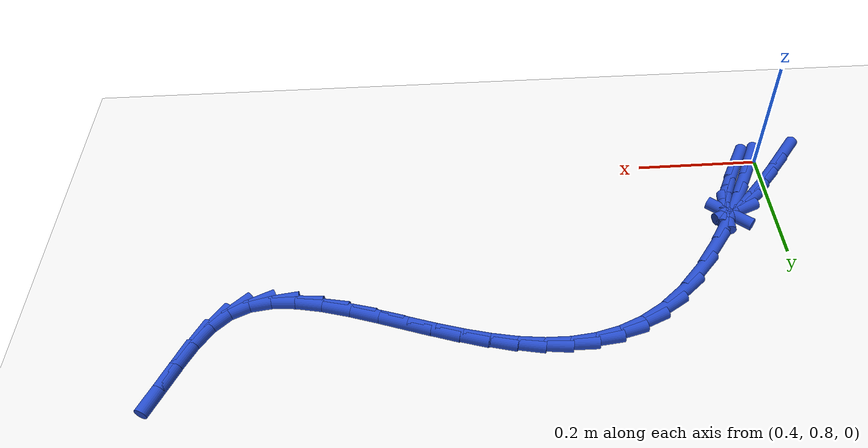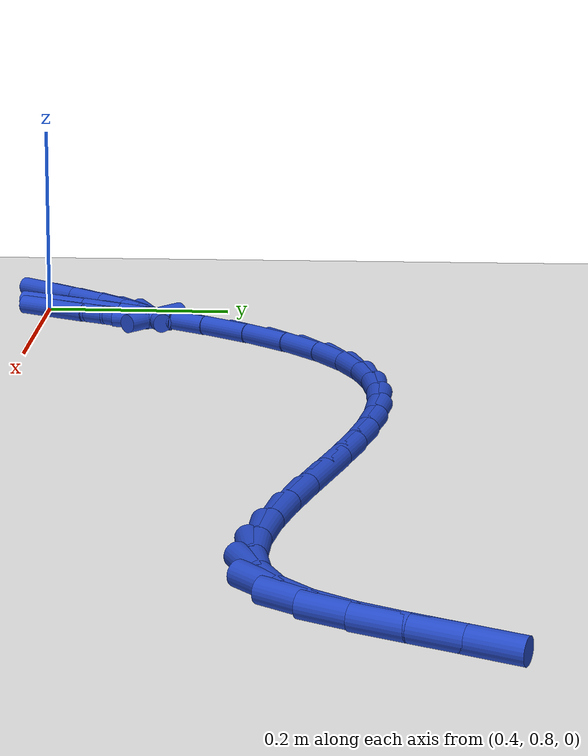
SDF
<sdf version="1.6">
 <world name="default">
  <model name="ground_plane">
   <static>1</static>
   <link name="link">
    <collision name="collision">
     <geometry><plane><normal>0 0 1</normal><size>100 100</size></plane></geometry>
     <surface><friction><ode><mu>100</mu><mu2>50</mu2></ode></friction></surface>
    </collision>
    <visual name="visual">
     <cast_shadows>0</cast_shadows>
     <geometry><plane><normal>0 0 1</normal><size>100 100</size></plane></geometry>
     <material>
      <script><uri>file://media/materials/scripts/gazebo.material</uri><name>Gazebo/WhiteGlow</name></script>
     </material>
    </visual>
   </link>
  </model>
  <model name="line">
   <link name="link_18">
    <pose>0.35145759149359745 0.7937490673103714 0.01 0 1.57 0.9050532319355539</pose>
    <collision name="collision">
     <geometry><cylinder><radius>0.01</radius><length>0.08</length></cylinder></geometry>
    </collision>
    <visual name="visual">
     <material>
      <script><name>Gazebo/Blue</name><uri>file://media/materials/scripts/gazebo.material</uri></script>
     </material>
     <geometry><cylinder><radius>0.01</radius><length>0.08</length></cylinder></geometry>
    </visual>
   </link>
   <link name="link_19">
    <pose>0.38018925200581055 0.8303336623813288 0.01 0 1.57 0.8774405375104989</pose>
    <collision name="collision">
     <geometry><cylinder><radius>0.01</radius><length>0.08</length></cylinder></geometry>
    </collision>
    <visual name="visual">
     <material>
      <script><name>Gazebo/Blue</name><uri>file://media/materials/scripts/gazebo.material</uri></script>
     </material>
     <geometry><cylinder><radius>0.01</radius><length>0.08</length></cylinder></geometry>
    </visual>
   </link>
   <link name="link_20">
    <pose>0.4063986894016276 0.861873545687972 0.01 0 1.57 0.840209370832982</pose>
    <collision name="collision">
     <geometry><cylinder><radius>0.01</radius><length>0.08</length></cylinder></geometry>
    </collision>
    <visual name="visual">
     <material>
      <script><name>Gazebo/Blue</name><uri>file://media/materials/scripts/gazebo.material</uri></script>
     </material>
     <geometry><cylinder><radius>0.01</radius><length>0.08</length></cylinder></geometry>
    </visual>
   </link>
   <link name="link_21">
    <pose>0.42950767926813904 0.8876655451920389 0.01 0 1.57 0.7830929997503696</pose>
    <collision name="collision">
     <geometry><cylinder><radius>0.01</radius><length>0.08</length></cylinder></geometry>
    </collision>
    <visual name="visual">
     <material>
      <script><name>Gazebo/Blue</name><uri>file://media/materials/scripts/gazebo.material</uri></script>
     </material>
     <geometry><cylinder><radius>0.01</radius><length>0.08</length></cylinder></geometry>
    </visual>
   </link>
   <link name="link_22">
    <pose>0.44893799719243466 0.9070064888552665 0.01 0 1.57 0.6766660261103121</pose>
    <collision name="collision">
     <geometry><cylinder><radius>0.01</radius><length>0.08</length></cylinder></geometry>
    </collision>
    <visual name="visual">
     <material>
      <script><name>Gazebo/Blue</name><uri>file://media/materials/scripts/gazebo.material</uri></script>
     </material>
     <geometry><cylinder><radius>0.01</radius><length>0.08</length></cylinder></geometry>
    </visual>
   </link>
   <link name="link_23">
    <pose>0.46411141876160455 0.9191932046393917 0.01 0 1.57 0.3965774962460237</pose>
    <collision name="collision">
     <geometry><cylinder><radius>0.01</radius><length>0.08</length></cylinder></geometry>
    </collision>
    <visual name="visual">
     <material>
      <script><name>Gazebo/Blue</name><uri>file://media/materials/scripts/gazebo.material</uri></script>
     </material>
     <geometry><cylinder><radius>0.01</radius><length>0.08</length></cylinder></geometry>
    </visual>
   </link>
   <link name="link_24">
    <pose>0.47444971956273885 0.9235225205061519 0.01 0 1.57 -0.7097799023059139</pose>
    <collision name="collision">
     <geometry><cylinder><radius>0.01</radius><length>0.08</length></cylinder></geometry>
    </collision>
    <visual name="visual">
     <material>
      <script><name>Gazebo/Blue</name><uri>file://media/materials/scripts/gazebo.material</uri></script>
     </material>
     <geometry><cylinder><radius>0.01</radius><length>0.08</length></cylinder></geometry>
    </visual>
   </link>
   <link name="link_25">
    <pose>0.47937467518292737 0.9192912644172844 0.01 0 1.57 1.4919225792418223</pose>
    <collision name="collision">
     <geometry><cylinder><radius>0.01</radius><length>0.08</length></cylinder></geometry>
    </collision>
    <visual name="visual">
     <material>
      <script><name>Gazebo/Blue</name><uri>file://media/materials/scripts/gazebo.material</uri></script>
     </material>
     <geometry><cylinder><radius>0.01</radius><length>0.08</length></cylinder></geometry>
    </visual>
   </link>
   <link name="link_26">
    <pose>0.4783080612092605 0.9057962643345265 0.01 0 1.57 1.2561294388235926</pose>
    <collision name="collision">
     <geometry><cylinder><radius>0.01</radius><length>0.08</length></cylinder></geometry>
    </collision>
    <visual name="visual">
     <material>
      <script><name>Gazebo/Blue</name><uri>file://media/materials/scripts/gazebo.material</uri></script>
     </material>
     <geometry><cylinder><radius>0.01</radius><length>0.08</length></cylinder></geometry>
    </visual>
   </link>
   <link name="link_27">
    <pose>0.4706716532288282 0.8823343482196155 0.01 0 1.57 1.1640334516660944</pose>
    <collision name="collision">
     <geometry><cylinder><radius>0.01</radius><length>0.08</length></cylinder></geometry>
    </collision>
    <visual name="visual">
     <material>
      <script><name>Gazebo/Blue</name><uri>file://media/materials/scripts/gazebo.material</uri></script>
     </material>
     <geometry><cylinder><radius>0.01</radius><length>0.08</length></cylinder></geometry>
    </visual>
   </link>
   <link name="link_28">
    <pose>0.4562442401005578 0.8488435958315781 0.01 0 1.57 1.1198259371495412</pose>
    <collision name="collision">
     <geometry><cylinder><radius>0.01</radius><length>0.08</length></cylinder></geometry>
    </collision>
    <visual name="visual">
     <material>
      <script><name>Gazebo/Blue</name><uri>file://media/materials/scripts/gazebo.material</uri></script>
     </material>
     <geometry><cylinder><radius>0.01</radius><length>0.08</length></cylinder></geometry>
    </visual>
   </link>
   <link name="link_29">
    <pose>0.43737880218477027 0.8098857383649793 0.01 0 1.57 1.088221807217513</pose>
    <collision name="collision">
     <geometry><cylinder><radius>0.01</radius><length>0.08</length></cylinder></geometry>
    </collision>
    <visual name="visual">
     <material>
      <script><name>Gazebo/Blue</name><uri>file://media/materials/scripts/gazebo.material</uri></script>
     </material>
     <geometry><cylinder><radius>0.01</radius><length>0.08</length></cylinder></geometry>
    </visual>
   </link>
   <link name="link_36">
    <pose>0.4138292707366294 0.8070556492563422 0.01 0 1.57 1.136280830870113</pose>
    <collision name="collision">
     <geometry><cylinder><radius>0.01</radius><length>0.08</length></cylinder></geometry>
    </collision>
    <visual name="visual">
     <material>
      <script><name>Gazebo/Blue</name><uri>file://media/materials/scripts/gazebo.material</uri></script>
     </material>
     <geometry><cylinder><radius>0.01</radius><length>0.08</length></cylinder></geometry>
    </visual>
   </link>
   <link name="link_37">
    <pose>0.4340012934886664 0.8505206882266921 0.01 0 1.57 1.0981485871081271</pose>
    <collision name="collision">
     <geometry><cylinder><radius>0.01</radius><length>0.08</length></cylinder></geometry>
    </collision>
    <visual name="visual">
     <material>
      <script><name>Gazebo/Blue</name><uri>file://media/materials/scripts/gazebo.material</uri></script>
     </material>
     <geometry><cylinder><radius>0.01</radius><length>0.08</length></cylinder></geometry>
    </visual>
   </link>
   <link name="link_38">
    <pose>0.458258331327164 0.8979624542513392 0.01 0 1.57 1.0558533815253084</pose>
    <collision name="collision">
     <geometry><cylinder><radius>0.01</radius><length>0.08</length></cylinder></geometry>
    </collision>
    <visual name="visual">
     <material>
      <script><name>Gazebo/Blue</name><uri>file://media/materials/scripts/gazebo.material</uri></script>
     </material>
     <geometry><cylinder><radius>0.01</radius><length>0.08</length></cylinder></geometry>
    </visual>
   </link>
   <link name="link_39">
    <pose>0.4858524588518607 0.946726851750425 0.01 0 1.57 1.0040866494532676</pose>
    <collision name="collision">
     <geometry><cylinder><radius>0.01</radius><length>0.08</length></cylinder></geometry>
    </collision>
    <visual name="visual">
     <material>
      <script><name>Gazebo/Blue</name><uri>file://media/materials/scripts/gazebo.material</uri></script>
     </material>
     <geometry><cylinder><radius>0.01</radius><length>0.08</length></cylinder></geometry>
    </visual>
   </link>
   <link name="link_40">
    <pose>0.516035750662495 0.9941597851440909 0.01 0 1.57 0.9356103478978652</pose>
    <collision name="collision">
     <geometry><cylinder><radius>0.01</radius><length>0.08</length></cylinder></geometry>
    </collision>
    <visual name="visual">
     <material>
      <script><name>Gazebo/Blue</name><uri>file://media/materials/scripts/gazebo.material</uri></script>
     </material>
     <geometry><cylinder><radius>0.01</radius><length>0.08</length></cylinder></geometry>
    </visual>
   </link>
   <link name="link_41">
    <pose>0.5480602813588054 1.0376071588524782 0.01 0 1.57 0.8385921787919395</pose>
    <collision name="collision">
     <geometry><cylinder><radius>0.01</radius><length>0.08</length></cylinder></geometry>
    </collision>
    <visual name="visual">
     <material>
      <script><name>Gazebo/Blue</name><uri>file://media/materials/scripts/gazebo.material</uri></script>
     </material>
     <geometry><cylinder><radius>0.01</radius><length>0.08</length></cylinder></geometry>
    </visual>
   </link>
   <link name="link_42">
    <pose>0.5811889219782671 1.074462018076603 0.01 0 1.57 0.7105581301492536</pose>
    <collision name="collision">
     <geometry><cylinder><radius>0.01</radius><length>0.08</length></cylinder></geometry>
    </collision>
    <visual name="visual">
     <material>
      <script><name>Gazebo/Blue</name><uri>file://media/materials/scripts/gazebo.material</uri></script>
     </material>
     <geometry><cylinder><radius>0.01</radius><length>0.08</length></cylinder></geometry>
    </visual>
   </link>
   <link name="link_43">
    <pose>0.6150175830558817 1.1035715674687974 0.01 0 1.57 0.5655733959831735</pose>
    <collision name="collision">
     <geometry><cylinder><radius>0.01</radius><length>0.08</length></cylinder></geometry>
    </collision>
    <visual name="visual">
     <material>
      <script><name>Gazebo/Blue</name><uri>file://media/materials/scripts/gazebo.material</uri></script>
     </material>
     <geometry><cylinder><radius>0.01</radius><length>0.08</length></cylinder></geometry>
    </visual>
   </link>
   <link name="link_44">
    <pose>0.6495304367287406 1.1254782889156494 0.01 0 1.57 0.41099620286412136</pose>
    <collision name="collision">
     <geometry><cylinder><radius>0.01</radius><length>0.08</length></cylinder></geometry>
    </collision>
    <visual name="visual">
     <material>
      <script><name>Gazebo/Blue</name><uri>file://media/materials/scripts/gazebo.material</uri></script>
     </material>
     <geometry><cylinder><radius>0.01</radius><length>0.08</length></cylinder></geometry>
    </visual>
   </link>
   <link name="link_45">
    <pose>0.6847335775464717 1.1408203847321674 0.01 0 1.57 0.2565010872065976</pose>
    <collision name="collision">
     <geometry><cylinder><radius>0.01</radius><length>0.08</length></cylinder></geometry>
    </collision>
    <visual name="visual">
     <material>
      <script><name>Gazebo/Blue</name><uri>file://media/materials/scripts/gazebo.material</uri></script>
     </material>
     <geometry><cylinder><radius>0.01</radius><length>0.08</length></cylinder></geometry>
    </visual>
   </link>
   <link name="link_46">
    <pose>0.7206331000587022 1.1502360572333612 0.01 0 1.57 0.11229137412723873</pose>
    <collision name="collision">
     <geometry><cylinder><radius>0.01</radius><length>0.08</length></cylinder></geometry>
    </collision>
    <visual name="visual">
     <material>
      <script><name>Gazebo/Blue</name><uri>file://media/materials/scripts/gazebo.material</uri></script>
     </material>
     <geometry><cylinder><radius>0.01</radius><length>0.08</length></cylinder></geometry>
    </visual>
   </link>
   <link name="link_47">
    <pose>0.7572350988150601 1.1543635087342392 0.01 0 1.57 -0.014004959587400417</pose>
    <collision name="collision">
     <geometry><cylinder><radius>0.01</radius><length>0.08</length></cylinder></geometry>
    </collision>
    <visual name="visual">
     <material>
      <script><name>Gazebo/Blue</name><uri>file://media/materials/scripts/gazebo.material</uri></script>
     </material>
     <geometry><cylinder><radius>0.01</radius><length>0.08</length></cylinder></geometry>
    </visual>
   </link>
   <link name="link_48">
    <pose>0.7945456683651727 1.1538409415498105 0.01 0 1.57 -0.1186862477228279</pose>
    <collision name="collision">
     <geometry><cylinder><radius>0.01</radius><length>0.08</length></cylinder></geometry>
    </collision>
    <visual name="visual">
     <material>
      <script><name>Gazebo/Blue</name><uri>file://media/materials/scripts/gazebo.material</uri></script>
     </material>
     <geometry><cylinder><radius>0.01</radius><length>0.08</length></cylinder></geometry>
    </visual>
   </link>
   <link name="link_49">
    <pose>0.8325709032586673 1.1493065579950847 0.01 0 1.57 -0.20133325647392575</pose>
    <collision name="collision">
     <geometry><cylinder><radius>0.01</radius><length>0.08</length></cylinder></geometry>
    </collision>
    <visual name="visual">
     <material>
      <script><name>Gazebo/Blue</name><uri>file://media/materials/scripts/gazebo.material</uri></script>
     </material>
     <geometry><cylinder><radius>0.01</radius><length>0.08</length></cylinder></geometry>
    </visual>
   </link>
   <link name="link_50">
    <pose>0.8713168980451721 1.14139856038507 0.01 0 1.57 -0.2633750907515432</pose>
    <collision name="collision">
     <geometry><cylinder><radius>0.01</radius><length>0.08</length></cylinder></geometry>
    </collision>
    <visual name="visual">
     <material>
      <script><name>Gazebo/Blue</name><uri>file://media/materials/scripts/gazebo.material</uri></script>
     </material>
     <geometry><cylinder><radius>0.01</radius><length>0.08</length></cylinder></geometry>
    </visual>
   </link>
   <link name="link_51">
    <pose>0.910789747274314 1.130755151034776 0.01 0 1.57 -0.30687484125945513</pose>
    <collision name="collision">
     <geometry><cylinder><radius>0.01</radius><length>0.08</length></cylinder></geometry>
    </collision>
    <visual name="visual">
     <material>
      <script><name>Gazebo/Blue</name><uri>file://media/materials/scripts/gazebo.material</uri></script>
     </material>
     <geometry><cylinder><radius>0.01</radius><length>0.08</length></cylinder></geometry>
    </visual>
   </link>
   <link name="link_52">
    <pose>0.9509955454957211 1.1180145322592112 0.01 0 1.57 -0.3338180950539624</pose>
    <collision name="collision">
     <geometry><cylinder><radius>0.01</radius><length>0.08</length></cylinder></geometry>
    </collision>
    <visual name="visual">
     <material>
      <script><name>Gazebo/Blue</name><uri>file://media/materials/scripts/gazebo.material</uri></script>
     </material>
     <geometry><cylinder><radius>0.01</radius><length>0.08</length></cylinder></geometry>
    </visual>
   </link>
   <link name="link_53">
    <pose>0.991940250162675 1.103815051117857 0.01 0 1.57 -0.34305378490728666</pose>
    <collision name="collision">
     <geometry><cylinder><radius>0.01</radius><length>0.08</length></cylinder></geometry>
    </collision>
    <visual name="visual">
     <material>
      <script><name>Gazebo/Blue</name><uri>file://media/materials/scripts/gazebo.material</uri></script>
     </material>
     <geometry><cylinder><radius>0.01</radius><length>0.08</length></cylinder></geometry>
    </visual>
   </link>
   <link name="link_54">
    <pose>1.0334445051789358 1.0889907062156663 0.01 0 1.57 -0.3272957050151631</pose>
    <collision name="collision">
     <geometry><cylinder><radius>0.01</radius><length>0.08</length></cylinder></geometry>
    </collision>
    <visual name="visual">
     <material>
      <script><name>Gazebo/Blue</name><uri>file://media/materials/scripts/gazebo.material</uri></script>
     </material>
     <geometry><cylinder><radius>0.01</radius><length>0.08</length></cylinder></geometry>
    </visual>
   </link>
   <link name="link_55">
    <pose>1.0747772366231614 1.07495799239397 0.01 0 1.57 -0.2827508466270067</pose>
    <collision name="collision">
     <geometry><cylinder><radius>0.01</radius><length>0.08</length></cylinder></geometry>
    </collision>
    <visual name="visual">
     <material>
      <script><name>Gazebo/Blue</name><uri>file://media/materials/scripts/gazebo.material</uri></script>
     </material>
     <geometry><cylinder><radius>0.01</radius><length>0.08</length></cylinder></geometry>
    </visual>
   </link>
   <link name="link_56">
    <pose>1.1151051571162207 1.0632413200838426 0.01 0 1.57 -0.20184469161221588</pose>
    <collision name="collision">
     <geometry><cylinder><radius>0.01</radius><length>0.08</length></cylinder></geometry>
    </collision>
    <visual name="visual">
     <material>
      <script><name>Gazebo/Blue</name><uri>file://media/materials/scripts/gazebo.material</uri></script>
     </material>
     <geometry><cylinder><radius>0.01</radius><length>0.08</length></cylinder></geometry>
    </visual>
   </link>
   <link name="link_57">
    <pose>1.1535949792789832 1.0553650997163582 0.01 0 1.57 -0.06999900424213847</pose>
    <collision name="collision">
     <geometry><cylinder><radius>0.01</radius><length>0.08</length></cylinder></geometry>
    </collision>
    <visual name="visual">
     <material>
      <script><name>Gazebo/Blue</name><uri>file://media/materials/scripts/gazebo.material</uri></script>
     </material>
     <geometry><cylinder><radius>0.01</radius><length>0.08</length></cylinder></geometry>
    </visual>
   </link>
   <link name="link_58">
    <pose>1.1894134157323186 1.0528537417225916 0.01 0 1.57 0.13466150895083281</pose>
    <collision name="collision">
     <geometry><cylinder><radius>0.01</radius><length>0.08</length></cylinder></geometry>
    </collision>
    <visual name="visual">
     <material>
      <script><name>Gazebo/Blue</name><uri>file://media/materials/scripts/gazebo.material</uri></script>
     </material>
     <geometry><cylinder><radius>0.01</radius><length>0.08</length></cylinder></geometry>
    </visual>
   </link>
   <link name="link_59">
    <pose>1.2217271790970958 1.057231656533618 0.01 0 1.57 0.4288456730193809</pose>
    <collision name="collision">
     <geometry><cylinder><radius>0.01</radius><length>0.08</length></cylinder></geometry>
    </collision>
    <visual name="visual">
     <material>
      <script><name>Gazebo/Blue</name><uri>file://media/materials/scripts/gazebo.material</uri></script>
     </material>
     <geometry><cylinder><radius>0.01</radius><length>0.08</length></cylinder></geometry>
    </visual>
   </link>
   <link name="link_60">
    <pose>1.2497031522457636 1.070022960835237 0.01 0 1.57 0.7557472335822882</pose>
    <collision name="collision">
     <geometry><cylinder><radius>0.01</radius><length>0.08</length></cylinder></geometry>
    </collision>
    <visual name="visual">
     <material>
      <script><name>Gazebo/Blue</name><uri>file://media/materials/scripts/gazebo.material</uri></script>
     </material>
     <geometry><cylinder><radius>0.01</radius><length>0.08</length></cylinder></geometry>
    </visual>
   </link>
   <link name="link_61">
    <pose>1.2729721134688545 1.0919513846858242 0.01 0 1.57 0.9787714327131343</pose>
    <collision name="collision">
     <geometry><cylinder><radius>0.01</radius><length>0.08</length></cylinder></geometry>
    </collision>
    <visual name="visual">
     <material>
      <script><name>Gazebo/Blue</name><uri>file://media/materials/scripts/gazebo.material</uri></script>
     </material>
     <geometry><cylinder><radius>0.01</radius><length>0.08</length></cylinder></geometry>
    </visual>
   </link>
   <link name="link_62">
    <pose>1.2926393245220775 1.1211966432604923 0.01 0 1.57 1.0991370596460108</pose>
    <collision name="collision">
     <geometry><cylinder><radius>0.01</radius><length>0.08</length></cylinder></geometry>
    </collision>
    <visual name="visual">
     <material>
      <script><name>Gazebo/Blue</name><uri>file://media/materials/scripts/gazebo.material</uri></script>
     </material>
     <geometry><cylinder><radius>0.01</radius><length>0.08</length></cylinder></geometry>
    </visual>
   </link>
   <link name="link_63">
    <pose>1.310102336750312 1.1554341469505882 0.01 0 1.57 1.146837839591366</pose>
    <collision name="collision">
     <geometry><cylinder><radius>0.01</radius><length>0.08</length></cylinder></geometry>
    </collision>
    <visual name="visual">
     <material>
      <script><name>Gazebo/Blue</name><uri>file://media/materials/scripts/gazebo.material</uri></script>
     </material>
     <geometry><cylinder><radius>0.01</radius><length>0.08</length></cylinder></geometry>
    </visual>
   </link>
   <link name="link_64">
    <pose>1.3267587014984363 1.1923393061474576 0.01 0 1.57 1.1371547107826017</pose>
    <collision name="collision">
     <geometry><cylinder><radius>0.01</radius><length>0.08</length></cylinder></geometry>
    </collision>
    <visual name="visual">
     <material>
      <script><name>Gazebo/Blue</name><uri>file://media/materials/scripts/gazebo.material</uri></script>
     </material>
     <geometry><cylinder><radius>0.01</radius><length>0.08</length></cylinder></geometry>
    </visual>
   </link>
  </model>
 </world>
</sdf>
